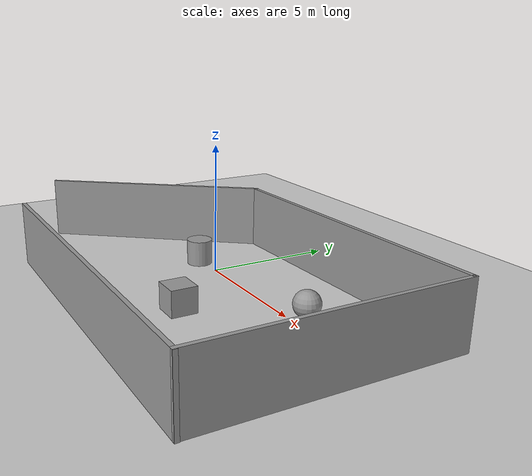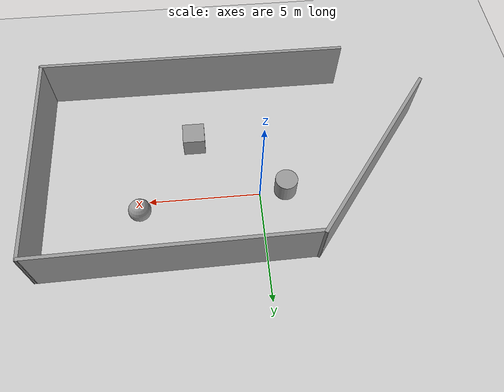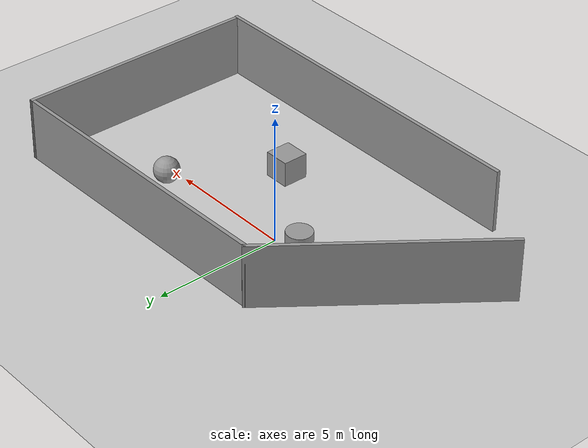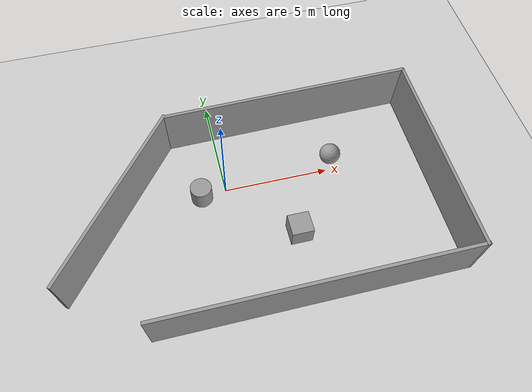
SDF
<sdf version="1.7">
 <world name="default">
  <light name="sun" type="directional">
   <pose>0 0 10 0 -0 0</pose>
   <diffuse>0.8 0.8 0.8 1</diffuse>
   <specular>0.2 0.2 0.2 1</specular>
   <attenuation>
    <range>1000</range>
    <constant>0.9</constant>
    <linear>0.01</linear>
    <quadratic>0.001</quadratic>
   </attenuation>
   <direction>-0.5 0.1 -0.9</direction>
   <spot><inner_angle>0</inner_angle><outer_angle>0</outer_angle><falloff>0</falloff></spot>
  </light>
  <model name="ground_plane">
   <static>1</static>
   <link name="link">
    <collision name="collision">
     <geometry><plane><normal>0 0 1</normal><size>100 100</size></plane></geometry>
     <surface><friction><ode><mu>100</mu><mu2>50</mu2></ode></friction></surface>
    </collision>
    <visual name="visual">
     <cast_shadows>0</cast_shadows>
     <geometry><plane><normal>0 0 1</normal><size>100 100</size></plane></geometry>
     <material>
      <script><uri>file://media/materials/scripts/gazebo.material</uri><name>Gazebo/Grey</name></script>
     </material>
    </visual>
   </link>
  </model>
  <gravity>0 0 -9.8</gravity>
  <magnetic_field>6e-06 2.3e-05 -4.2e-05</magnetic_field>
  <atmosphere type="adiabatic"/>
  <physics type="ode">
   <max_step_size>0.001</max_step_size>
   <real_time_factor>1</real_time_factor>
   <real_time_update_rate>1000</real_time_update_rate>
  </physics>
  <scene><ambient>0.4 0.4 0.4 1</ambient><background>0.7 0.7 0.7 1</background><shadows>1</shadows></scene>
  <audio><device>default</device></audio>
  <spherical_coordinates>
   <surface_model>EARTH_WGS84</surface_model>
   <latitude_deg>0</latitude_deg>
   <longitude_deg>0</longitude_deg>
   <elevation>0</elevation>
   <heading_deg>0</heading_deg>
  </spherical_coordinates>
  <model name="chota_room">
   <pose>0.967627 -1.47423 0 0 -0 0</pose>
   <link name="Wall_11">
    <collision name="Wall_11_Collision">
     <geometry><box><size>9.23532 0.15 2.5</size></box></geometry>
     <pose>0 0 1.25 0 -0 0</pose>
    </collision>
    <visual name="Wall_11_Visual">
     <pose>0 0 1.25 0 -0 0</pose>
     <geometry><box><size>9.23532 0.15 2.5</size></box></geometry>
     <material>
      <script><uri>file://media/materials/scripts/gazebo.material</uri><name>Gazebo/Grey</name></script>
      <ambient>1 1 1 1</ambient>
     </material>
     <meta><layer>0</layer></meta>
    </visual>
    <pose>-5.92395 1.04507 0 0 -0 0.912759</pose>
   </link>
   <link name="Wall_12">
    <collision name="Wall_12_Collision">
     <geometry><box><size>11.9862 0.15 2.5</size></box></geometry>
     <pose>0 0 1.25 0 -0 0</pose>
    </collision>
    <visual name="Wall_12_Visual">
     <pose>0 0 1.25 0 -0 0</pose>
     <geometry><box><size>11.9862 0.15 2.5</size></box></geometry>
     <material>
      <script><uri>file://media/materials/scripts/gazebo.material</uri><name>Gazebo/Grey</name></script>
      <ambient>1 1 1 1</ambient>
     </material>
     <meta><layer>0</layer></meta>
    </visual>
    <pose>2.77142 4.69988 0 0 -0 0.017091</pose>
   </link>
   <link name="Wall_13">
    <collision name="Wall_13_Collision">
     <geometry><box><size>9.75322 0.15 2.5</size></box></geometry>
     <pose>0 0 1.25 0 -0 0</pose>
    </collision>
    <visual name="Wall_13_Visual">
     <pose>0 0 1.25 0 -0 0</pose>
     <geometry><box><size>9.75322 0.15 2.5</size></box></geometry>
     <material>
      <script><uri>file://media/materials/scripts/gazebo.material</uri><name>Gazebo/Grey</name></script>
      <ambient>1 1 1 1</ambient>
     </material>
     <meta><layer>0</layer></meta>
    </visual>
    <pose>8.71741 -0.000508 0 0 -0 -1.57324</pose>
   </link>
   <link name="Wall_14">
    <collision name="Wall_14_Collision">
     <geometry><box><size>14.25 0.15 2.5</size></box></geometry>
     <pose>0 0 1.25 0 -0 0</pose>
    </collision>
    <visual name="Wall_14_Visual">
     <pose>0 0 1.25 0 -0 0</pose>
     <geometry><box><size>14.25 0.15 2.5</size></box></geometry>
     <material>
      <script><uri>file://media/materials/scripts/gazebo.material</uri><name>Gazebo/Grey</name></script>
      <ambient>1 1 1 1</ambient>
     </material>
     <meta><layer>0</layer></meta>
    </visual>
    <pose>1.6823 -4.80203 0 0 -0 3.14159</pose>
   </link>
   <static>1</static>
  </model>
  <model name="unit_cylinder">
   <pose>-1.16188 -0.11846 0.499997 3e-06 4e-06 -0</pose>
   <link name="link">
    <inertial>
     <mass>1</mass>
     <inertia><ixx>0.145833</ixx><ixy>0</ixy><ixz>0</ixz><iyy>0.145833</iyy><iyz>0</iyz><izz>0.125</izz></inertia>
    </inertial>
    <collision name="collision">
     <geometry><cylinder><radius>0.5</radius><length>1</length></cylinder></geometry>
    </collision>
    <visual name="visual">
     <geometry><cylinder><radius>0.5</radius><length>1</length></cylinder></geometry>
     <material>
      <script><name>Gazebo/Grey</name><uri>file://media/materials/scripts/gazebo.material</uri></script>
     </material>
    </visual>
   </link>
  </model>
  <model name="unit_sphere">
   <pose>5.35468 0.597227 0.5 0 -0 0</pose>
   <link name="link">
    <inertial>
     <mass>1</mass>
     <inertia><ixx>0.1</ixx><ixy>0</ixy><ixz>0</ixz><iyy>0.1</iyy><iyz>0</iyz><izz>0.1</izz></inertia>
    </inertial>
    <collision name="collision"><geometry><sphere><radius>0.5</radius></sphere></geometry></collision>
    <visual name="visual">
     <geometry><sphere><radius>0.5</radius></sphere></geometry>
     <material>
      <script><name>Gazebo/Grey</name><uri>file://media/materials/scripts/gazebo.material</uri></script>
     </material>
    </visual>
   </link>
  </model>
  <model name="unit_box">
   <pose>2.82065 -2.9498 0.5 0 -0 0</pose>
   <link name="link">
    <inertial>
     <mass>1</mass>
     <inertia>
      <ixx>0.166667</ixx>
      <ixy>0</ixy>
      <ixz>0</ixz>
      <iyy>0.166667</iyy>
      <iyz>0</iyz>
      <izz>0.166667</izz>
     </inertia>
    </inertial>
    <collision name="collision"><geometry><box><size>1 1 1</size></box></geometry></collision>
    <visual name="visual">
     <geometry><box><size>1 1 1</size></box></geometry>
     <material>
      <script><name>Gazebo/Grey</name><uri>file://media/materials/scripts/gazebo.material</uri></script>
     </material>
    </visual>
   </link>
  </model>
 </world>
</sdf>
